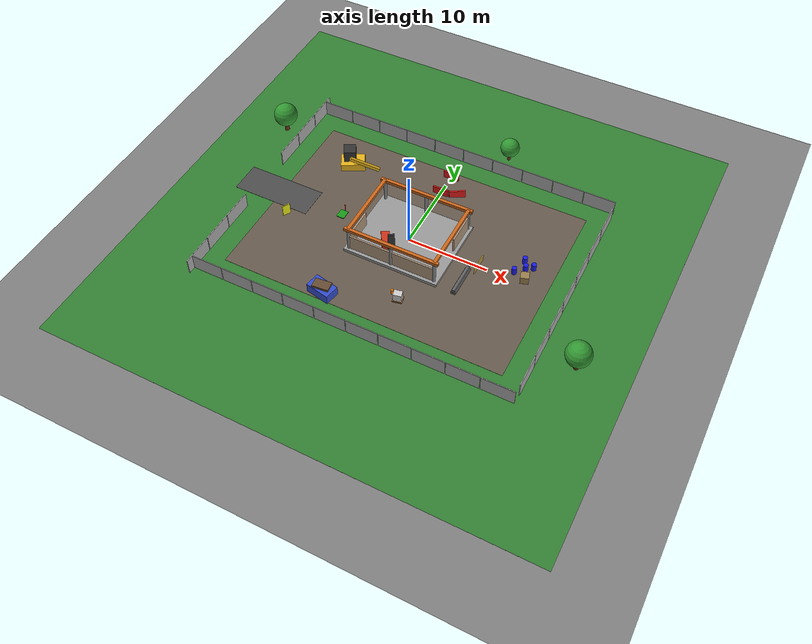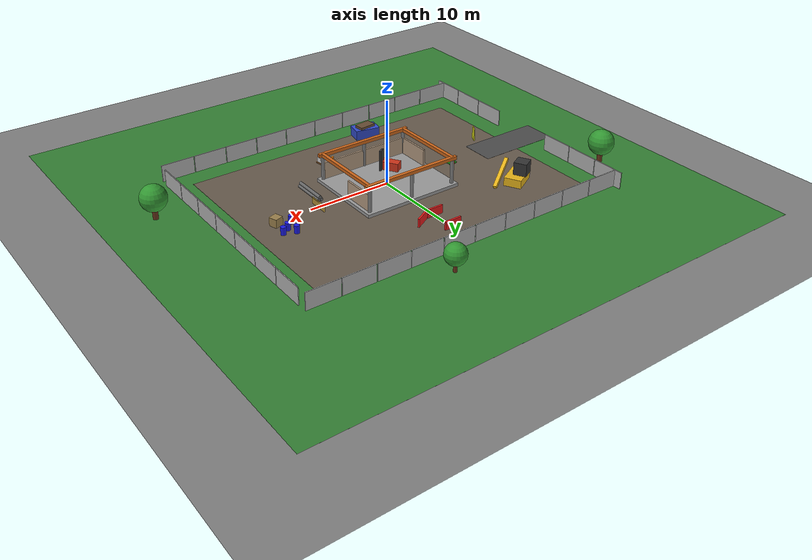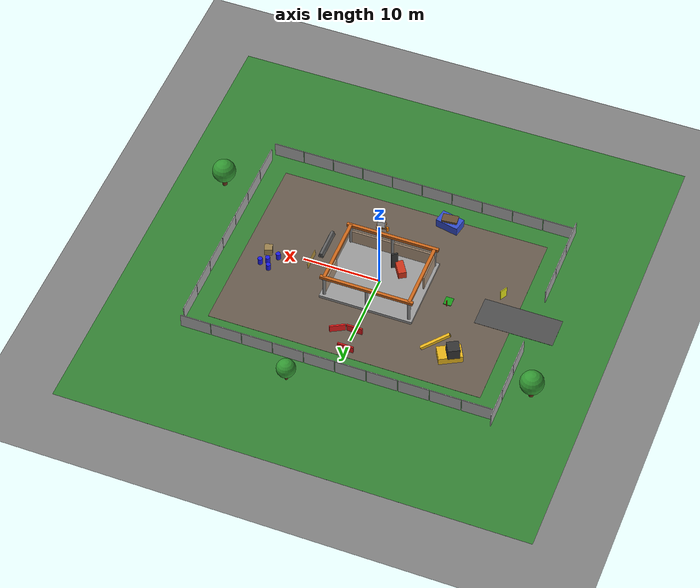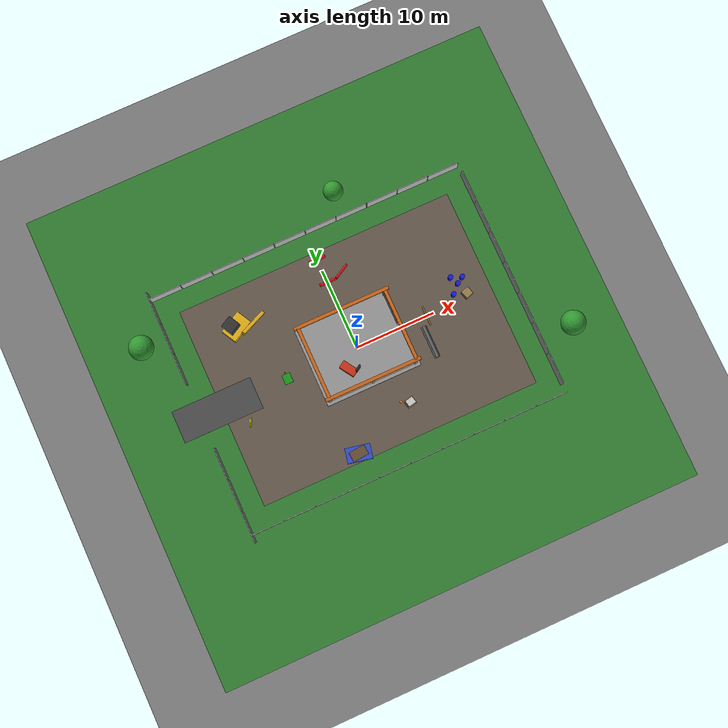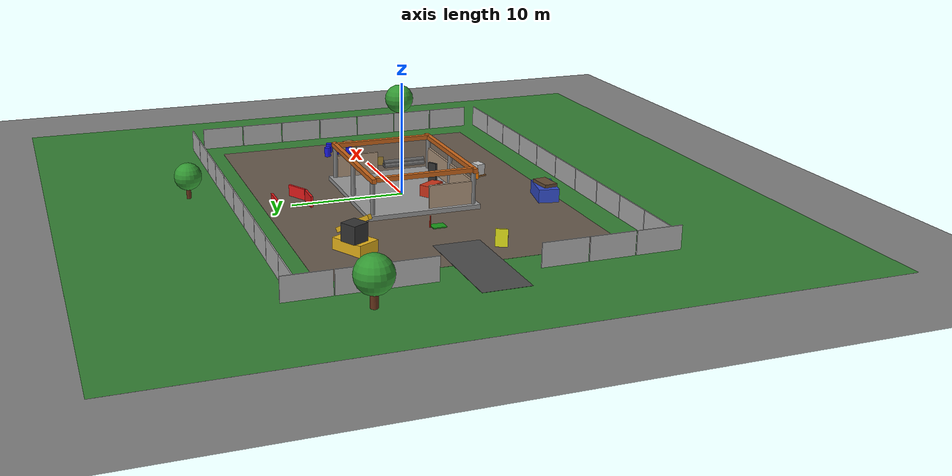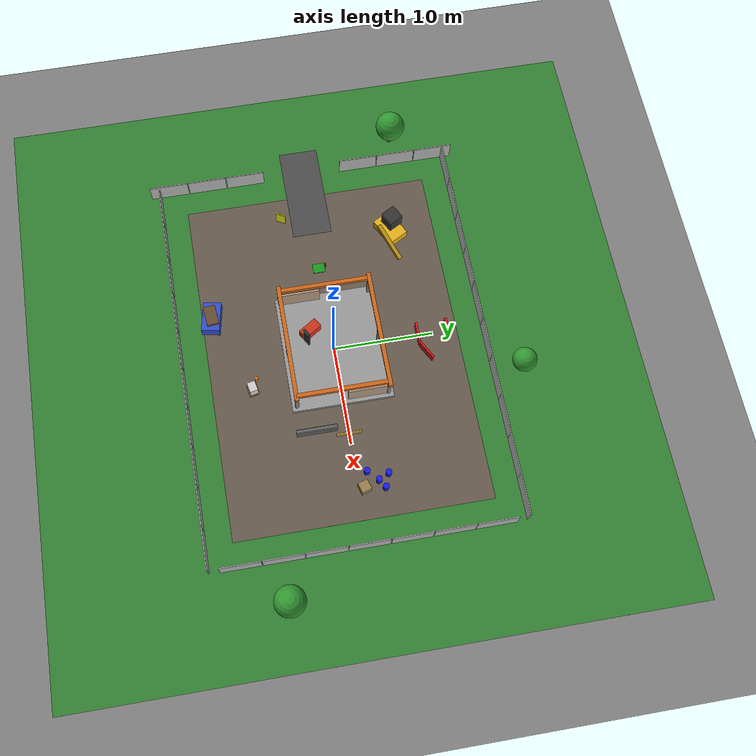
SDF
<?xml version='1.0'?>
<sdf version='1.8'>
  <world name='niihan_patrol_world'>

    <plugin filename="gz-sim-physics-system" name="gz::sim::systems::Physics"></plugin>
    <plugin filename="gz-sim-user-commands-system" name="gz::sim::systems::UserCommands"></plugin>
    <plugin filename="gz-sim-scene-broadcaster-system" name="gz::sim::systems::SceneBroadcaster"></plugin>
    <plugin filename="gz-sim-sensors-system" name="gz::sim::systems::Sensors">
      <render_engine>ogre2</render_engine>
    </plugin>
    <plugin filename="gz-sim-imu-system" name="gz::sim::systems::Imu"></plugin>
    <plugin filename="gz-sim-navsat-system" name="gz::sim::systems::NavSat"></plugin>
    <plugin filename="gz-sim-contact-system" name="gz::sim::systems::Contact"></plugin>

    <physics name='default_physics' type='ode'>
      <max_step_size>0.001</max_step_size>
      <real_time_factor>1.0</real_time_factor>
      <real_time_update_rate>1000</real_time_update_rate>
      <ode>
        <solver>
          <type>quick</type>
          <iters>50</iters>
        </solver>
      </ode>
    </physics>
    <gravity>0 0 -9.81</gravity>

    <scene>
      <ambient>0.5 0.5 0.5 1</ambient>
      <background>0.6 0.7 0.8 1</background>
      <shadows>true</shadows>
    </scene>

    <light type='directional' name='sun'>
      <cast_shadows>true</cast_shadows>
      <pose>0 0 15 0 0 0</pose>
      <diffuse>0.9 0.9 0.85 1</diffuse>
      <specular>0.2 0.2 0.2 1</specular>
      <direction>-0.4 0.2 -0.9</direction>
    </light>

    <model name='ground_plane'>
      <static>true</static>
      <link name='link'>
        <collision name='collision'>
          <geometry>
            <plane>
              <normal>0 0 1</normal>
              <size>60 60</size>
            </plane>
          </geometry>
          <surface>
            <friction>
              <ode>
                <mu>0.9</mu>
                <mu2>0.9</mu2>
              </ode>
            </friction>
          </surface>
        </collision>
        <visual name='visual'>
          <geometry>
            <plane>
              <normal>0 0 1</normal>
              <size>60 60</size>
            </plane>
          </geometry>
          <material>
            <ambient>0.5 0.5 0.5 1</ambient>
            <diffuse>0.5 0.5 0.5 1</diffuse>
          </material>
        </visual>
      </link>
    </model>

    <model name='charging_dock'>
      <static>true</static>
      <pose>-9 0 0.05 0 0 0</pose>
      <link name='link'>
        <collision name='collision'>
          <geometry><box><size>1.0 1.2 0.1</size></box></geometry>
        </collision>
        <visual name='visual'>
          <geometry><box><size>1.0 1.2 0.1</size></box></geometry>
          <material>
            <ambient>0.1 0.6 0.1 1</ambient>
            <diffuse>0.1 0.6 0.1 1</diffuse>
          </material>
        </visual>
      </link>
    </model>
    <model name='dock_marker_post'>
      <static>true</static>
      <pose>-9 0.7 0.5 0 0 0</pose>
      <link name='link'>
        <collision name='collision'>
          <geometry><cylinder><radius>0.05</radius><length>1.0</length></cylinder></geometry>
        </collision>
        <visual name='visual'>
          <geometry><cylinder><radius>0.05</radius><length>1.0</length></cylinder></geometry>
          <material>
            <ambient>0.9 0.2 0.1 1</ambient>
            <diffuse>0.9 0.2 0.1 1</diffuse>
          </material>
        </visual>
      </link>
    </model>
    <model name='geofence_marker_east'>
      <static>true</static>
      <pose>9 0 0.4 0 0 0</pose>
      <link name='link'>
        <collision name='collision'>
          <geometry><box><size>0.1 2.4 0.8</size></box></geometry>
        </collision>
        <visual name='visual'>
          <geometry><box><size>0.1 2.4 0.8</size></box></geometry>
          <material>
            <ambient>0.9 0.7 0.1 0.5</ambient>
            <diffuse>0.9 0.7 0.1 0.5</diffuse>
          </material>
        </visual>
      </link>
    </model>
    <model name='gravel_area'>
      <static>true</static>
      <pose>0 0 0.005 0 0 0</pose>
      <link name='link'>
        <collision name='collision'>
          <geometry><box><size>35 25 0.01</size></box></geometry>
        </collision>
        <visual name='visual'>
          <geometry><box><size>35 25 0.01</size></box></geometry>
          <material>
            <ambient>0.4 0.35 0.3 1</ambient>
            <diffuse>0.4 0.35 0.3 1</diffuse>
          </material>
        </visual>
      </link>
    </model>
    <model name='grass_area'>
      <static>true</static>
      <pose>0 0 0.001 0 0 0</pose>
      <link name='link'>
        <collision name='collision'>
          <geometry><box><size>60 60 0.002</size></box></geometry>
        </collision>
        <visual name='visual'>
          <geometry><box><size>60 60 0.002</size></box></geometry>
          <material>
            <ambient>0.2 0.5 0.2 1</ambient>
            <diffuse>0.2 0.5 0.2 1</diffuse>
          </material>
        </visual>
      </link>
    </model>
    <model name='entrance_path'>
      <static>true</static>
      <pose>-18 0 0.01 0 0 0</pose>
      <link name='link'>
        <collision name='collision'>
          <geometry><box><size>10 4 0.02</size></box></geometry>
        </collision>
        <visual name='visual'>
          <geometry><box><size>10 4 0.02</size></box></geometry>
          <material>
            <ambient>0.3 0.3 0.3 1</ambient>
            <diffuse>0.3 0.3 0.3 1</diffuse>
          </material>
        </visual>
      </link>
    </model>
    <model name='fence_n_0'>
      <static>true</static>
      <pose>-18.0 15.0 1.0 0 0 0</pose>
      <link name='link'>
        <collision name='collision'>
          <geometry><box><size>3.9 0.1 2.0</size></box></geometry>
        </collision>
        <visual name='visual'>
          <geometry><box><size>3.9 0.1 2.0</size></box></geometry>
          <material>
            <ambient>0.7 0.7 0.7 1</ambient>
            <diffuse>0.7 0.7 0.7 1</diffuse>
          </material>
        </visual>
      </link>
    </model>
    <model name='fence_n_1'>
      <static>true</static>
      <pose>-14.0 15.0 1.0 0 0 0</pose>
      <link name='link'>
        <collision name='collision'>
          <geometry><box><size>3.9 0.1 2.0</size></box></geometry>
        </collision>
        <visual name='visual'>
          <geometry><box><size>3.9 0.1 2.0</size></box></geometry>
          <material>
            <ambient>0.7 0.7 0.7 1</ambient>
            <diffuse>0.7 0.7 0.7 1</diffuse>
          </material>
        </visual>
      </link>
    </model>
    <model name='fence_n_2'>
      <static>true</static>
      <pose>-10.0 15.0 1.0 0 0 0</pose>
      <link name='link'>
        <collision name='collision'>
          <geometry><box><size>3.9 0.1 2.0</size></box></geometry>
        </collision>
        <visual name='visual'>
          <geometry><box><size>3.9 0.1 2.0</size></box></geometry>
          <material>
            <ambient>0.7 0.7 0.7 1</ambient>
            <diffuse>0.7 0.7 0.7 1</diffuse>
          </material>
        </visual>
      </link>
    </model>
    <model name='fence_n_3'>
      <static>true</static>
      <pose>-6.0 15.0 1.0 0 0 0</pose>
      <link name='link'>
        <collision name='collision'>
          <geometry><box><size>3.9 0.1 2.0</size></box></geometry>
        </collision>
        <visual name='visual'>
          <geometry><box><size>3.9 0.1 2.0</size></box></geometry>
          <material>
            <ambient>0.7 0.7 0.7 1</ambient>
            <diffuse>0.7 0.7 0.7 1</diffuse>
          </material>
        </visual>
      </link>
    </model>
    <model name='fence_n_4'>
      <static>true</static>
      <pose>-2.0 15.0 1.0 0 0 0</pose>
      <link name='link'>
        <collision name='collision'>
          <geometry><box><size>3.9 0.1 2.0</size></box></geometry>
        </collision>
        <visual name='visual'>
          <geometry><box><size>3.9 0.1 2.0</size></box></geometry>
          <material>
            <ambient>0.7 0.7 0.7 1</ambient>
            <diffuse>0.7 0.7 0.7 1</diffuse>
          </material>
        </visual>
      </link>
    </model>
    <model name='fence_n_5'>
      <static>true</static>
      <pose>2.0 15.0 1.0 0 0 0</pose>
      <link name='link'>
        <collision name='collision'>
          <geometry><box><size>3.9 0.1 2.0</size></box></geometry>
        </collision>
        <visual name='visual'>
          <geometry><box><size>3.9 0.1 2.0</size></box></geometry>
          <material>
            <ambient>0.7 0.7 0.7 1</ambient>
            <diffuse>0.7 0.7 0.7 1</diffuse>
          </material>
        </visual>
      </link>
    </model>
    <model name='fence_n_6'>
      <static>true</static>
      <pose>6.0 15.0 1.0 0 0 0</pose>
      <link name='link'>
        <collision name='collision'>
          <geometry><box><size>3.9 0.1 2.0</size></box></geometry>
        </collision>
        <visual name='visual'>
          <geometry><box><size>3.9 0.1 2.0</size></box></geometry>
          <material>
            <ambient>0.7 0.7 0.7 1</ambient>
            <diffuse>0.7 0.7 0.7 1</diffuse>
          </material>
        </visual>
      </link>
    </model>
    <model name='fence_n_7'>
      <static>true</static>
      <pose>10.0 15.0 1.0 0 0 0</pose>
      <link name='link'>
        <collision name='collision'>
          <geometry><box><size>3.9 0.1 2.0</size></box></geometry>
        </collision>
        <visual name='visual'>
          <geometry><box><size>3.9 0.1 2.0</size></box></geometry>
          <material>
            <ambient>0.7 0.7 0.7 1</ambient>
            <diffuse>0.7 0.7 0.7 1</diffuse>
          </material>
        </visual>
      </link>
    </model>
    <model name='fence_n_8'>
      <static>true</static>
      <pose>14.0 15.0 1.0 0 0 0</pose>
      <link name='link'>
        <collision name='collision'>
          <geometry><box><size>3.9 0.1 2.0</size></box></geometry>
        </collision>
        <visual name='visual'>
          <geometry><box><size>3.9 0.1 2.0</size></box></geometry>
          <material>
            <ambient>0.7 0.7 0.7 1</ambient>
            <diffuse>0.7 0.7 0.7 1</diffuse>
          </material>
        </visual>
      </link>
    </model>
    <model name='fence_n_9'>
      <static>true</static>
      <pose>18.0 15.0 1.0 0 0 0</pose>
      <link name='link'>
        <collision name='collision'>
          <geometry><box><size>3.9 0.1 2.0</size></box></geometry>
        </collision>
        <visual name='visual'>
          <geometry><box><size>3.9 0.1 2.0</size></box></geometry>
          <material>
            <ambient>0.7 0.7 0.7 1</ambient>
            <diffuse>0.7 0.7 0.7 1</diffuse>
          </material>
        </visual>
      </link>
    </model>
    <model name='fence_s_0'>
      <static>true</static>
      <pose>-18.0 -15.0 1.0 0 0 0</pose>
      <link name='link'>
        <collision name='collision'>
          <geometry><box><size>3.9 0.1 2.0</size></box></geometry>
        </collision>
        <visual name='visual'>
          <geometry><box><size>3.9 0.1 2.0</size></box></geometry>
          <material>
            <ambient>0.7 0.7 0.7 1</ambient>
            <diffuse>0.7 0.7 0.7 1</diffuse>
          </material>
        </visual>
      </link>
    </model>
    <model name='fence_s_1'>
      <static>true</static>
      <pose>-14.0 -15.0 1.0 0 0 0</pose>
      <link name='link'>
        <collision name='collision'>
          <geometry><box><size>3.9 0.1 2.0</size></box></geometry>
        </collision>
        <visual name='visual'>
          <geometry><box><size>3.9 0.1 2.0</size></box></geometry>
          <material>
            <ambient>0.7 0.7 0.7 1</ambient>
            <diffuse>0.7 0.7 0.7 1</diffuse>
          </material>
        </visual>
      </link>
    </model>
    <model name='fence_s_2'>
      <static>true</static>
      <pose>-10.0 -15.0 1.0 0 0 0</pose>
      <link name='link'>
        <collision name='collision'>
          <geometry><box><size>3.9 0.1 2.0</size></box></geometry>
        </collision>
        <visual name='visual'>
          <geometry><box><size>3.9 0.1 2.0</size></box></geometry>
          <material>
            <ambient>0.7 0.7 0.7 1</ambient>
            <diffuse>0.7 0.7 0.7 1</diffuse>
          </material>
        </visual>
      </link>
    </model>
    <model name='fence_s_3'>
      <static>true</static>
      <pose>-6.0 -15.0 1.0 0 0 0</pose>
      <link name='link'>
        <collision name='collision'>
          <geometry><box><size>3.9 0.1 2.0</size></box></geometry>
        </collision>
        <visual name='visual'>
          <geometry><box><size>3.9 0.1 2.0</size></box></geometry>
          <material>
            <ambient>0.7 0.7 0.7 1</ambient>
            <diffuse>0.7 0.7 0.7 1</diffuse>
          </material>
        </visual>
      </link>
    </model>
    <model name='fence_s_4'>
      <static>true</static>
      <pose>-2.0 -15.0 1.0 0 0 0</pose>
      <link name='link'>
        <collision name='collision'>
          <geometry><box><size>3.9 0.1 2.0</size></box></geometry>
        </collision>
        <visual name='visual'>
          <geometry><box><size>3.9 0.1 2.0</size></box></geometry>
          <material>
            <ambient>0.7 0.7 0.7 1</ambient>
            <diffuse>0.7 0.7 0.7 1</diffuse>
          </material>
        </visual>
      </link>
    </model>
    <model name='fence_s_5'>
      <static>true</static>
      <pose>2.0 -15.0 1.0 0 0 0</pose>
      <link name='link'>
        <collision name='collision'>
          <geometry><box><size>3.9 0.1 2.0</size></box></geometry>
        </collision>
        <visual name='visual'>
          <geometry><box><size>3.9 0.1 2.0</size></box></geometry>
          <material>
            <ambient>0.7 0.7 0.7 1</ambient>
            <diffuse>0.7 0.7 0.7 1</diffuse>
          </material>
        </visual>
      </link>
    </model>
    <model name='fence_s_6'>
      <static>true</static>
      <pose>6.0 -15.0 1.0 0 0 0</pose>
      <link name='link'>
        <collision name='collision'>
          <geometry><box><size>3.9 0.1 2.0</size></box></geometry>
        </collision>
        <visual name='visual'>
          <geometry><box><size>3.9 0.1 2.0</size></box></geometry>
          <material>
            <ambient>0.7 0.7 0.7 1</ambient>
            <diffuse>0.7 0.7 0.7 1</diffuse>
          </material>
        </visual>
      </link>
    </model>
    <model name='fence_s_7'>
      <static>true</static>
      <pose>10.0 -15.0 1.0 0 0 0</pose>
      <link name='link'>
        <collision name='collision'>
          <geometry><box><size>3.9 0.1 2.0</size></box></geometry>
        </collision>
        <visual name='visual'>
          <geometry><box><size>3.9 0.1 2.0</size></box></geometry>
          <material>
            <ambient>0.7 0.7 0.7 1</ambient>
            <diffuse>0.7 0.7 0.7 1</diffuse>
          </material>
        </visual>
      </link>
    </model>
    <model name='fence_s_8'>
      <static>true</static>
      <pose>14.0 -15.0 1.0 0 0 0</pose>
      <link name='link'>
        <collision name='collision'>
          <geometry><box><size>3.9 0.1 2.0</size></box></geometry>
        </collision>
        <visual name='visual'>
          <geometry><box><size>3.9 0.1 2.0</size></box></geometry>
          <material>
            <ambient>0.7 0.7 0.7 1</ambient>
            <diffuse>0.7 0.7 0.7 1</diffuse>
          </material>
        </visual>
      </link>
    </model>
    <model name='fence_s_9'>
      <static>true</static>
      <pose>18.0 -15.0 1.0 0 0 0</pose>
      <link name='link'>
        <collision name='collision'>
          <geometry><box><size>3.9 0.1 2.0</size></box></geometry>
        </collision>
        <visual name='visual'>
          <geometry><box><size>3.9 0.1 2.0</size></box></geometry>
          <material>
            <ambient>0.7 0.7 0.7 1</ambient>
            <diffuse>0.7 0.7 0.7 1</diffuse>
          </material>
        </visual>
      </link>
    </model>
    <model name='fence_e_0'>
      <static>true</static>
      <pose>20.0 -12.0 1.0 0 0 0</pose>
      <link name='link'>
        <collision name='collision'>
          <geometry><box><size>0.1 3.9 2.0</size></box></geometry>
        </collision>
        <visual name='visual'>
          <geometry><box><size>0.1 3.9 2.0</size></box></geometry>
          <material>
            <ambient>0.7 0.7 0.7 1</ambient>
            <diffuse>0.7 0.7 0.7 1</diffuse>
          </material>
        </visual>
      </link>
    </model>
    <model name='fence_e_1'>
      <static>true</static>
      <pose>20.0 -8.0 1.0 0 0 0</pose>
      <link name='link'>
        <collision name='collision'>
          <geometry><box><size>0.1 3.9 2.0</size></box></geometry>
        </collision>
        <visual name='visual'>
          <geometry><box><size>0.1 3.9 2.0</size></box></geometry>
          <material>
            <ambient>0.7 0.7 0.7 1</ambient>
            <diffuse>0.7 0.7 0.7 1</diffuse>
          </material>
        </visual>
      </link>
    </model>
    <model name='fence_e_2'>
      <static>true</static>
      <pose>20.0 -4.0 1.0 0 0 0</pose>
      <link name='link'>
        <collision name='collision'>
          <geometry><box><size>0.1 3.9 2.0</size></box></geometry>
        </collision>
        <visual name='visual'>
          <geometry><box><size>0.1 3.9 2.0</size></box></geometry>
          <material>
            <ambient>0.7 0.7 0.7 1</ambient>
            <diffuse>0.7 0.7 0.7 1</diffuse>
          </material>
        </visual>
      </link>
    </model>
    <model name='fence_e_3'>
      <static>true</static>
      <pose>20.0 0.0 1.0 0 0 0</pose>
      <link name='link'>
        <collision name='collision'>
          <geometry><box><size>0.1 3.9 2.0</size></box></geometry>
        </collision>
        <visual name='visual'>
          <geometry><box><size>0.1 3.9 2.0</size></box></geometry>
          <material>
            <ambient>0.7 0.7 0.7 1</ambient>
            <diffuse>0.7 0.7 0.7 1</diffuse>
          </material>
        </visual>
      </link>
    </model>
    <model name='fence_e_4'>
      <static>true</static>
      <pose>20.0 4.0 1.0 0 0 0</pose>
      <link name='link'>
        <collision name='collision'>
          <geometry><box><size>0.1 3.9 2.0</size></box></geometry>
        </collision>
        <visual name='visual'>
          <geometry><box><size>0.1 3.9 2.0</size></box></geometry>
          <material>
            <ambient>0.7 0.7 0.7 1</ambient>
            <diffuse>0.7 0.7 0.7 1</diffuse>
          </material>
        </visual>
      </link>
    </model>
    <model name='fence_e_5'>
      <static>true</static>
      <pose>20.0 8.0 1.0 0 0 0</pose>
      <link name='link'>
        <collision name='collision'>
          <geometry><box><size>0.1 3.9 2.0</size></box></geometry>
        </collision>
        <visual name='visual'>
          <geometry><box><size>0.1 3.9 2.0</size></box></geometry>
          <material>
            <ambient>0.7 0.7 0.7 1</ambient>
            <diffuse>0.7 0.7 0.7 1</diffuse>
          </material>
        </visual>
      </link>
    </model>
    <model name='fence_e_6'>
      <static>true</static>
      <pose>20.0 12.0 1.0 0 0 0</pose>
      <link name='link'>
        <collision name='collision'>
          <geometry><box><size>0.1 3.9 2.0</size></box></geometry>
        </collision>
        <visual name='visual'>
          <geometry><box><size>0.1 3.9 2.0</size></box></geometry>
          <material>
            <ambient>0.7 0.7 0.7 1</ambient>
            <diffuse>0.7 0.7 0.7 1</diffuse>
          </material>
        </visual>
      </link>
    </model>
    <model name='fence_w_n_0'>
      <static>true</static>
      <pose>-20.0 6.0 1.0 0 0 0</pose>
      <link name='link'>
        <collision name='collision'>
          <geometry><box><size>0.1 3.9 2.0</size></box></geometry>
        </collision>
        <visual name='visual'>
          <geometry><box><size>0.1 3.9 2.0</size></box></geometry>
          <material>
            <ambient>0.7 0.7 0.7 1</ambient>
            <diffuse>0.7 0.7 0.7 1</diffuse>
          </material>
        </visual>
      </link>
    </model>
    <model name='fence_w_n_1'>
      <static>true</static>
      <pose>-20.0 10.0 1.0 0 0 0</pose>
      <link name='link'>
        <collision name='collision'>
          <geometry><box><size>0.1 3.9 2.0</size></box></geometry>
        </collision>
        <visual name='visual'>
          <geometry><box><size>0.1 3.9 2.0</size></box></geometry>
          <material>
            <ambient>0.7 0.7 0.7 1</ambient>
            <diffuse>0.7 0.7 0.7 1</diffuse>
          </material>
        </visual>
      </link>
    </model>
    <model name='fence_w_n_2'>
      <static>true</static>
      <pose>-20.0 14.0 1.0 0 0 0</pose>
      <link name='link'>
        <collision name='collision'>
          <geometry><box><size>0.1 3.9 2.0</size></box></geometry>
        </collision>
        <visual name='visual'>
          <geometry><box><size>0.1 3.9 2.0</size></box></geometry>
          <material>
            <ambient>0.7 0.7 0.7 1</ambient>
            <diffuse>0.7 0.7 0.7 1</diffuse>
          </material>
        </visual>
      </link>
    </model>
    <model name='fence_w_s_0'>
      <static>true</static>
      <pose>-20.0 -14.0 1.0 0 0 0</pose>
      <link name='link'>
        <collision name='collision'>
          <geometry><box><size>0.1 3.9 2.0</size></box></geometry>
        </collision>
        <visual name='visual'>
          <geometry><box><size>0.1 3.9 2.0</size></box></geometry>
          <material>
            <ambient>0.7 0.7 0.7 1</ambient>
            <diffuse>0.7 0.7 0.7 1</diffuse>
          </material>
        </visual>
      </link>
    </model>
    <model name='fence_w_s_1'>
      <static>true</static>
      <pose>-20.0 -10.0 1.0 0 0 0</pose>
      <link name='link'>
        <collision name='collision'>
          <geometry><box><size>0.1 3.9 2.0</size></box></geometry>
        </collision>
        <visual name='visual'>
          <geometry><box><size>0.1 3.9 2.0</size></box></geometry>
          <material>
            <ambient>0.7 0.7 0.7 1</ambient>
            <diffuse>0.7 0.7 0.7 1</diffuse>
          </material>
        </visual>
      </link>
    </model>
    <model name='fence_w_s_2'>
      <static>true</static>
      <pose>-20.0 -6.0 1.0 0 0 0</pose>
      <link name='link'>
        <collision name='collision'>
          <geometry><box><size>0.1 3.9 2.0</size></box></geometry>
        </collision>
        <visual name='visual'>
          <geometry><box><size>0.1 3.9 2.0</size></box></geometry>
          <material>
            <ambient>0.7 0.7 0.7 1</ambient>
            <diffuse>0.7 0.7 0.7 1</diffuse>
          </material>
        </visual>
      </link>
    </model>
    <model name='foundation'>
      <static>true</static>
      <pose>0 0 0.2 0 0 0</pose>
      <link name='link'>
        <collision name='collision'>
          <geometry><box><size>12 10 0.4</size></box></geometry>
        </collision>
        <visual name='visual'>
          <geometry><box><size>12 10 0.4</size></box></geometry>
          <material>
            <ambient>0.6 0.6 0.6 1</ambient>
            <diffuse>0.6 0.6 0.6 1</diffuse>
          </material>
        </visual>
      </link>
    </model>
    <model name='column_-5.5_-4.5'>
      <static>true</static>
      <pose>-5.5 -4.5 1.9 0 0 0</pose>
      <link name='link'>
        <collision name='collision'>
          <geometry><cylinder><radius>0.2</radius><length>3.0</length></cylinder></geometry>
        </collision>
        <visual name='visual'>
          <geometry><cylinder><radius>0.2</radius><length>3.0</length></cylinder></geometry>
          <material>
            <ambient>0.5 0.5 0.5 1</ambient>
            <diffuse>0.5 0.5 0.5 1</diffuse>
          </material>
        </visual>
      </link>
    </model>
    <model name='column_-5.5_4.5'>
      <static>true</static>
      <pose>-5.5 4.5 1.9 0 0 0</pose>
      <link name='link'>
        <collision name='collision'>
          <geometry><cylinder><radius>0.2</radius><length>3.0</length></cylinder></geometry>
        </collision>
        <visual name='visual'>
          <geometry><cylinder><radius>0.2</radius><length>3.0</length></cylinder></geometry>
          <material>
            <ambient>0.5 0.5 0.5 1</ambient>
            <diffuse>0.5 0.5 0.5 1</diffuse>
          </material>
        </visual>
      </link>
    </model>
    <model name='column_0_-4.5'>
      <static>true</static>
      <pose>0 -4.5 1.9 0 0 0</pose>
      <link name='link'>
        <collision name='collision'>
          <geometry><cylinder><radius>0.2</radius><length>3.0</length></cylinder></geometry>
        </collision>
        <visual name='visual'>
          <geometry><cylinder><radius>0.2</radius><length>3.0</length></cylinder></geometry>
          <material>
            <ambient>0.5 0.5 0.5 1</ambient>
            <diffuse>0.5 0.5 0.5 1</diffuse>
          </material>
        </visual>
      </link>
    </model>
    <model name='column_0_4.5'>
      <static>true</static>
      <pose>0 4.5 1.9 0 0 0</pose>
      <link name='link'>
        <collision name='collision'>
          <geometry><cylinder><radius>0.2</radius><length>3.0</length></cylinder></geometry>
        </collision>
        <visual name='visual'>
          <geometry><cylinder><radius>0.2</radius><length>3.0</length></cylinder></geometry>
          <material>
            <ambient>0.5 0.5 0.5 1</ambient>
            <diffuse>0.5 0.5 0.5 1</diffuse>
          </material>
        </visual>
      </link>
    </model>
    <model name='column_5.5_-4.5'>
      <static>true</static>
      <pose>5.5 -4.5 1.9 0 0 0</pose>
      <link name='link'>
        <collision name='collision'>
          <geometry><cylinder><radius>0.2</radius><length>3.0</length></cylinder></geometry>
        </collision>
        <visual name='visual'>
          <geometry><cylinder><radius>0.2</radius><length>3.0</length></cylinder></geometry>
          <material>
            <ambient>0.5 0.5 0.5 1</ambient>
            <diffuse>0.5 0.5 0.5 1</diffuse>
          </material>
        </visual>
      </link>
    </model>
    <model name='column_5.5_4.5'>
      <static>true</static>
      <pose>5.5 4.5 1.9 0 0 0</pose>
      <link name='link'>
        <collision name='collision'>
          <geometry><cylinder><radius>0.2</radius><length>3.0</length></cylinder></geometry>
        </collision>
        <visual name='visual'>
          <geometry><cylinder><radius>0.2</radius><length>3.0</length></cylinder></geometry>
          <material>
            <ambient>0.5 0.5 0.5 1</ambient>
            <diffuse>0.5 0.5 0.5 1</diffuse>
          </material>
        </visual>
      </link>
    </model>
    <model name='wall_1'>
      <static>true</static>
      <pose>0 -4.5 1.4 0 0 0</pose>
      <link name='link'>
        <collision name='collision'>
          <geometry><box><size>11 0.2 2.0</size></box></geometry>
        </collision>
        <visual name='visual'>
          <geometry><box><size>11 0.2 2.0</size></box></geometry>
          <material>
            <ambient>0.7 0.6 0.5 1</ambient>
            <diffuse>0.7 0.6 0.5 1</diffuse>
          </material>
        </visual>
      </link>
    </model>
    <model name='wall_2'>
      <static>true</static>
      <pose>-5.5 -2.5 1.4 0 0 0</pose>
      <link name='link'>
        <collision name='collision'>
          <geometry><box><size>0.2 4.0 2.0</size></box></geometry>
        </collision>
        <visual name='visual'>
          <geometry><box><size>0.2 4.0 2.0</size></box></geometry>
          <material>
            <ambient>0.7 0.6 0.5 1</ambient>
            <diffuse>0.7 0.6 0.5 1</diffuse>
          </material>
        </visual>
      </link>
    </model>
    <model name='wall_3'>
      <static>true</static>
      <pose>5.5 2.5 1.4 0 0 0</pose>
      <link name='link'>
        <collision name='collision'>
          <geometry><box><size>0.2 4.0 2.0</size></box></geometry>
        </collision>
        <visual name='visual'>
          <geometry><box><size>0.2 4.0 2.0</size></box></geometry>
          <material>
            <ambient>0.7 0.6 0.5 1</ambient>
            <diffuse>0.7 0.6 0.5 1</diffuse>
          </material>
        </visual>
      </link>
    </model>
    <model name='beam_1'>
      <static>true</static>
      <pose>0 -4.5 3.4 0 0 0</pose>
      <link name='link'>
        <collision name='collision'>
          <geometry><box><size>12 0.4 0.4</size></box></geometry>
        </collision>
        <visual name='visual'>
          <geometry><box><size>12 0.4 0.4</size></box></geometry>
          <material>
            <ambient>0.8 0.4 0.1 1</ambient>
            <diffuse>0.8 0.4 0.1 1</diffuse>
          </material>
        </visual>
      </link>
    </model>
    <model name='beam_2'>
      <static>true</static>
      <pose>0 4.5 3.4 0 0 0</pose>
      <link name='link'>
        <collision name='collision'>
          <geometry><box><size>12 0.4 0.4</size></box></geometry>
        </collision>
        <visual name='visual'>
          <geometry><box><size>12 0.4 0.4</size></box></geometry>
          <material>
            <ambient>0.8 0.4 0.1 1</ambient>
            <diffuse>0.8 0.4 0.1 1</diffuse>
          </material>
        </visual>
      </link>
    </model>
    <model name='beam_3'>
      <static>true</static>
      <pose>-5.5 0 3.4 0 0 0</pose>
      <link name='link'>
        <collision name='collision'>
          <geometry><box><size>0.4 9 0.4</size></box></geometry>
        </collision>
        <visual name='visual'>
          <geometry><box><size>0.4 9 0.4</size></box></geometry>
          <material>
            <ambient>0.8 0.4 0.1 1</ambient>
            <diffuse>0.8 0.4 0.1 1</diffuse>
          </material>
        </visual>
      </link>
    </model>
    <model name='beam_4'>
      <static>true</static>
      <pose>5.5 0 3.4 0 0 0</pose>
      <link name='link'>
        <collision name='collision'>
          <geometry><box><size>0.4 9 0.4</size></box></geometry>
        </collision>
        <visual name='visual'>
          <geometry><box><size>0.4 9 0.4</size></box></geometry>
          <material>
            <ambient>0.8 0.4 0.1 1</ambient>
            <diffuse>0.8 0.4 0.1 1</diffuse>
          </material>
        </visual>
      </link>
    </model>
    <model name='cone_1'>
      <static>true</static>
      <pose>2 -8 0.3 0 0 0</pose>
      <link name='link'>
        <collision name='collision'>
          <geometry><cylinder><radius>0.15</radius><length>0.6</length></cylinder></geometry>
        </collision>
        <visual name='visual'>
          <geometry><cylinder><radius>0.15</radius><length>0.6</length></cylinder></geometry>
          <material>
            <ambient>1.0 0.5 0.0 1</ambient>
            <diffuse>1.0 0.5 0.0 1</diffuse>
          </material>
        </visual>
      </link>
    </model>
    <model name='pallet_1'>
      <static>true</static>
      <pose>3 -8.5 0.075 0 0 0.2</pose>
      <link name='link'>
        <collision name='collision'>
          <geometry><box><size>1.2 1.0 0.15</size></box></geometry>
        </collision>
        <visual name='visual'>
          <geometry><box><size>1.2 1.0 0.15</size></box></geometry>
          <material>
            <ambient>0.6 0.4 0.2 1</ambient>
            <diffuse>0.6 0.4 0.2 1</diffuse>
          </material>
        </visual>
      </link>
    </model>
    <model name='material_stack_1'>
      <static>true</static>
      <pose>3 -8.5 0.65 0 0 0.2</pose>
      <link name='link'>
        <collision name='collision'>
          <geometry><box><size>1.0 0.8 1.0</size></box></geometry>
        </collision>
        <visual name='visual'>
          <geometry><box><size>1.0 0.8 1.0</size></box></geometry>
          <material>
            <ambient>0.8 0.8 0.8 1</ambient>
            <diffuse>0.8 0.8 0.8 1</diffuse>
          </material>
        </visual>
      </link>
    </model>
    <model name='barrier_narrow_1'>
      <static>true</static>
      <pose>0 8.5 0.5 0 0 0</pose>
      <link name='link'>
        <collision name='collision'>
          <geometry><box><size>2.0 0.2 1.0</size></box></geometry>
        </collision>
        <visual name='visual'>
          <geometry><box><size>2.0 0.2 1.0</size></box></geometry>
          <material>
            <ambient>0.9 0.1 0.1 1</ambient>
            <diffuse>0.9 0.1 0.1 1</diffuse>
          </material>
        </visual>
      </link>
    </model>
    <model name='barrier_narrow_2'>
      <static>true</static>
      <pose>0 11.5 0.5 0 0 0</pose>
      <link name='link'>
        <collision name='collision'>
          <geometry><box><size>2.0 0.2 1.0</size></box></geometry>
        </collision>
        <visual name='visual'>
          <geometry><box><size>2.0 0.2 1.0</size></box></geometry>
          <material>
            <ambient>0.9 0.1 0.1 1</ambient>
            <diffuse>0.9 0.1 0.1 1</diffuse>
          </material>
        </visual>
      </link>
    </model>
    <model name='barrier_narrow_3'>
      <static>true</static>
      <pose>2 9.0 0.5 0 0 0.5</pose>
      <link name='link'>
        <collision name='collision'>
          <geometry><box><size>2.0 0.2 1.0</size></box></geometry>
        </collision>
        <visual name='visual'>
          <geometry><box><size>2.0 0.2 1.0</size></box></geometry>
          <material>
            <ambient>0.9 0.1 0.1 1</ambient>
            <diffuse>0.9 0.1 0.1 1</diffuse>
          </material>
        </visual>
      </link>
    </model>
    <model name='skip_dumpster'>
      <static>true</static>
      <pose>-5 -11.5 0.6 0 0 -0.2</pose>
      <link name='link'>
        <collision name='collision'>
          <geometry><box><size>3.0 1.8 1.2</size></box></geometry>
        </collision>
        <visual name='visual'>
          <geometry><box><size>3.0 1.8 1.2</size></box></geometry>
          <material>
            <ambient>0.2 0.3 0.8 1</ambient>
            <diffuse>0.2 0.3 0.8 1</diffuse>
          </material>
        </visual>
      </link>
    </model>
    <model name='skip_pile'>
      <static>true</static>
      <pose>-5 -11.5 0.75 0 0 0.1</pose>
      <link name='link'>
        <collision name='collision'>
          <geometry><box><size>2.0 1.2 1.5</size></box></geometry>
        </collision>
        <visual name='visual'>
          <geometry><box><size>2.0 1.2 1.5</size></box></geometry>
          <material>
            <ambient>0.4 0.3 0.2 1</ambient>
            <diffuse>0.4 0.3 0.2 1</diffuse>
          </material>
        </visual>
      </link>
    </model>
    <model name='barrel_1'>
      <static>true</static>
      <pose>14 2 0.45 0 0 0</pose>
      <link name='link'>
        <collision name='collision'>
          <geometry><cylinder><radius>0.3</radius><length>0.9</length></cylinder></geometry>
        </collision>
        <visual name='visual'>
          <geometry><cylinder><radius>0.3</radius><length>0.9</length></cylinder></geometry>
          <material>
            <ambient>0.1 0.1 0.9 1</ambient>
            <diffuse>0.1 0.1 0.9 1</diffuse>
          </material>
        </visual>
      </link>
    </model>
    <model name='barrel_2'>
      <static>true</static>
      <pose>13.5 3 0.45 0 0 0</pose>
      <link name='link'>
        <collision name='collision'>
          <geometry><cylinder><radius>0.3</radius><length>0.9</length></cylinder></geometry>
        </collision>
        <visual name='visual'>
          <geometry><cylinder><radius>0.3</radius><length>0.9</length></cylinder></geometry>
          <material>
            <ambient>0.1 0.1 0.9 1</ambient>
            <diffuse>0.1 0.1 0.9 1</diffuse>
          </material>
        </visual>
      </link>
    </model>
    <model name='barrel_3'>
      <static>true</static>
      <pose>14.8 2.5 0.45 0 0 0</pose>
      <link name='link'>
        <collision name='collision'>
          <geometry><cylinder><radius>0.3</radius><length>0.9</length></cylinder></geometry>
        </collision>
        <visual name='visual'>
          <geometry><cylinder><radius>0.3</radius><length>0.9</length></cylinder></geometry>
          <material>
            <ambient>0.1 0.1 0.9 1</ambient>
            <diffuse>0.1 0.1 0.9 1</diffuse>
          </material>
        </visual>
      </link>
    </model>
    <model name='barrel_4'>
      <static>true</static>
      <pose>13 1 0.45 0 0 0</pose>
      <link name='link'>
        <collision name='collision'>
          <geometry><cylinder><radius>0.3</radius><length>0.9</length></cylinder></geometry>
        </collision>
        <visual name='visual'>
          <geometry><cylinder><radius>0.3</radius><length>0.9</length></cylinder></geometry>
          <material>
            <ambient>0.1 0.1 0.9 1</ambient>
            <diffuse>0.1 0.1 0.9 1</diffuse>
          </material>
        </visual>
      </link>
    </model>
    <model name='crate_1'>
      <static>true</static>
      <pose>14.5 0.5 0.5 0 0 0.3</pose>
      <link name='link'>
        <collision name='collision'>
          <geometry><box><size>1.0 1.0 1.0</size></box></geometry>
        </collision>
        <visual name='visual'>
          <geometry><box><size>1.0 1.0 1.0</size></box></geometry>
          <material>
            <ambient>0.6 0.5 0.3 1</ambient>
            <diffuse>0.6 0.5 0.3 1</diffuse>
          </material>
        </visual>
      </link>
    </model>
    <model name='excavator_base'>
      <static>true</static>
      <pose>-12 8 0.5 0 0 0.5</pose>
      <link name='link'>
        <collision name='collision'>
          <geometry><box><size>3.0 2.0 1.0</size></box></geometry>
        </collision>
        <visual name='visual'>
          <geometry><box><size>3.0 2.0 1.0</size></box></geometry>
          <material>
            <ambient>0.9 0.7 0.1 1</ambient>
            <diffuse>0.9 0.7 0.1 1</diffuse>
          </material>
        </visual>
      </link>
    </model>
    <model name='excavator_cab'>
      <static>true</static>
      <pose>-12.5 8.2 1.75 0 0 0.5</pose>
      <link name='link'>
        <collision name='collision'>
          <geometry><box><size>1.5 1.5 1.5</size></box></geometry>
        </collision>
        <visual name='visual'>
          <geometry><box><size>1.5 1.5 1.5</size></box></geometry>
          <material>
            <ambient>0.2 0.2 0.2 1</ambient>
            <diffuse>0.2 0.2 0.2 1</diffuse>
          </material>
        </visual>
      </link>
    </model>
    <model name='excavator_arm'>
      <static>true</static>
      <pose>-10 7.5 1.5 0 0.5 0.5</pose>
      <link name='link'>
        <collision name='collision'>
          <geometry><box><size>4.0 0.4 0.4</size></box></geometry>
        </collision>
        <visual name='visual'>
          <geometry><box><size>4.0 0.4 0.4</size></box></geometry>
          <material>
            <ambient>0.9 0.7 0.1 1</ambient>
            <diffuse>0.9 0.7 0.1 1</diffuse>
          </material>
        </visual>
      </link>
    </model>
    <model name='forklift_body'>
      <static>true</static>
      <pose>-2 -2 0.9 0 0 -1.0</pose>
      <link name='link'>
        <collision name='collision'>
          <geometry><box><size>2.0 1.0 1.0</size></box></geometry>
        </collision>
        <visual name='visual'>
          <geometry><box><size>2.0 1.0 1.0</size></box></geometry>
          <material>
            <ambient>0.8 0.2 0.1 1</ambient>
            <diffuse>0.8 0.2 0.1 1</diffuse>
          </material>
        </visual>
      </link>
    </model>
    <model name='forklift_mast'>
      <static>true</static>
      <pose>-1 -2.5 1.65 0 0 -1.0</pose>
      <link name='link'>
        <collision name='collision'>
          <geometry><box><size>0.2 0.8 2.5</size></box></geometry>
        </collision>
        <visual name='visual'>
          <geometry><box><size>0.2 0.8 2.5</size></box></geometry>
          <material>
            <ambient>0.2 0.2 0.2 1</ambient>
            <diffuse>0.2 0.2 0.2 1</diffuse>
          </material>
        </visual>
      </link>
    </model>
    <model name='stacked_pipe_1'>
      <static>true</static>
      <pose>8 -3 0.2 1.57 0 0</pose>
      <link name='link'>
        <collision name='collision'>
          <geometry><cylinder><radius>0.2</radius><length>4.0</length></cylinder></geometry>
        </collision>
        <visual name='visual'>
          <geometry><cylinder><radius>0.2</radius><length>4.0</length></cylinder></geometry>
          <material>
            <ambient>0.4 0.4 0.4 1</ambient>
            <diffuse>0.4 0.4 0.4 1</diffuse>
          </material>
        </visual>
      </link>
    </model>
    <model name='stacked_pipe_2'>
      <static>true</static>
      <pose>8.3 -3 0.2 1.57 0 0</pose>
      <link name='link'>
        <collision name='collision'>
          <geometry><cylinder><radius>0.2</radius><length>4.0</length></cylinder></geometry>
        </collision>
        <visual name='visual'>
          <geometry><cylinder><radius>0.2</radius><length>4.0</length></cylinder></geometry>
          <material>
            <ambient>0.4 0.4 0.4 1</ambient>
            <diffuse>0.4 0.4 0.4 1</diffuse>
          </material>
        </visual>
      </link>
    </model>
    <model name='stacked_pipe_3'>
      <static>true</static>
      <pose>8.15 -3 0.5 1.57 0 0</pose>
      <link name='link'>
        <collision name='collision'>
          <geometry><cylinder><radius>0.2</radius><length>4.0</length></cylinder></geometry>
        </collision>
        <visual name='visual'>
          <geometry><cylinder><radius>0.2</radius><length>4.0</length></cylinder></geometry>
          <material>
            <ambient>0.4 0.4 0.4 1</ambient>
            <diffuse>0.4 0.4 0.4 1</diffuse>
          </material>
        </visual>
      </link>
    </model>
    <model name='warning_sign'>
      <static>true</static>
      <pose>-15 -3 0.75 0 0 -0.5</pose>
      <link name='link'>
        <collision name='collision'>
          <geometry><box><size>0.1 1.0 1.5</size></box></geometry>
        </collision>
        <visual name='visual'>
          <geometry><box><size>0.1 1.0 1.5</size></box></geometry>
          <material>
            <ambient>0.9 0.9 0.1 1</ambient>
            <diffuse>0.9 0.9 0.1 1</diffuse>
          </material>
        </visual>
      </link>
    </model>
    <model name='tree_trunk_1'>
      <static>true</static>
      <pose>-23 10 1.0 0 0 0</pose>
      <link name='link'>
        <collision name='collision'>
          <geometry><cylinder><radius>0.3</radius><length>2.0</length></cylinder></geometry>
        </collision>
        <visual name='visual'>
          <geometry><cylinder><radius>0.3</radius><length>2.0</length></cylinder></geometry>
          <material>
            <ambient>0.4 0.2 0.1 1</ambient>
            <diffuse>0.4 0.2 0.1 1</diffuse>
          </material>
        </visual>
      </link>
    </model>
    <model name='tree_leaves_1'>
      <static>true</static>
      <pose>-23 10 2.5 0 0 0</pose>
      <link name='link'>
        <collision name='collision'>
          <geometry><sphere><radius>1.5</radius></sphere></geometry>
        </collision>
        <visual name='visual'>
          <geometry><sphere><radius>1.5</radius></sphere></geometry>
          <material>
            <ambient>0.2 0.6 0.2 1</ambient>
            <diffuse>0.2 0.6 0.2 1</diffuse>
          </material>
        </visual>
      </link>
    </model>
    <model name='tree_trunk_2'>
      <static>true</static>
      <pose>24 -8 1.0 0 0 0</pose>
      <link name='link'>
        <collision name='collision'>
          <geometry><cylinder><radius>0.3</radius><length>2.0</length></cylinder></geometry>
        </collision>
        <visual name='visual'>
          <geometry><cylinder><radius>0.3</radius><length>2.0</length></cylinder></geometry>
          <material>
            <ambient>0.4 0.2 0.1 1</ambient>
            <diffuse>0.4 0.2 0.1 1</diffuse>
          </material>
        </visual>
      </link>
    </model>
    <model name='tree_leaves_2'>
      <static>true</static>
      <pose>24 -8 2.5 0 0 0</pose>
      <link name='link'>
        <collision name='collision'>
          <geometry><sphere><radius>1.5</radius></sphere></geometry>
        </collision>
        <visual name='visual'>
          <geometry><sphere><radius>1.5</radius></sphere></geometry>
          <material>
            <ambient>0.2 0.6 0.2 1</ambient>
            <diffuse>0.2 0.6 0.2 1</diffuse>
          </material>
        </visual>
      </link>
    </model>
    <model name='tree_trunk_3'>
      <static>true</static>
      <pose>5 18 0.75 0 0 0</pose>
      <link name='link'>
        <collision name='collision'>
          <geometry><cylinder><radius>0.2</radius><length>1.5</length></cylinder></geometry>
        </collision>
        <visual name='visual'>
          <geometry><cylinder><radius>0.2</radius><length>1.5</length></cylinder></geometry>
          <material>
            <ambient>0.4 0.2 0.1 1</ambient>
            <diffuse>0.4 0.2 0.1 1</diffuse>
          </material>
        </visual>
      </link>
    </model>
    <model name='tree_leaves_3'>
      <static>true</static>
      <pose>5 18 2.0 0 0 0</pose>
      <link name='link'>
        <collision name='collision'>
          <geometry><sphere><radius>1.2</radius></sphere></geometry>
        </collision>
        <visual name='visual'>
          <geometry><sphere><radius>1.2</radius></sphere></geometry>
          <material>
            <ambient>0.2 0.6 0.2 1</ambient>
            <diffuse>0.2 0.6 0.2 1</diffuse>
          </material>
        </visual>
      </link>
    </model>

  </world>
</sdf>
